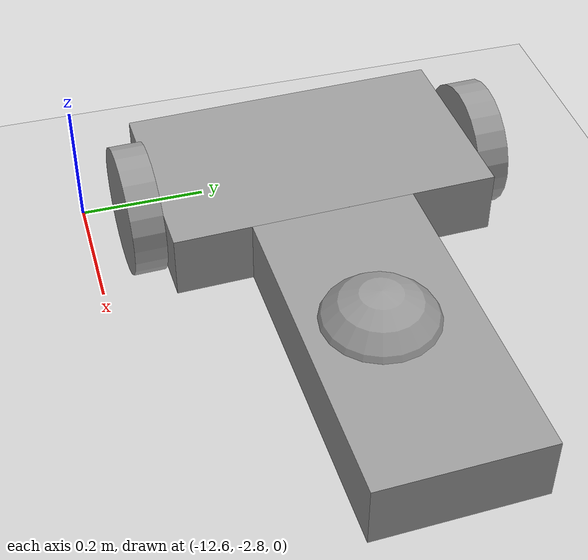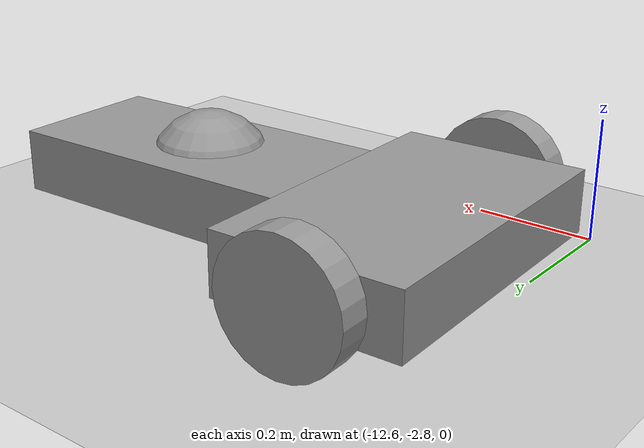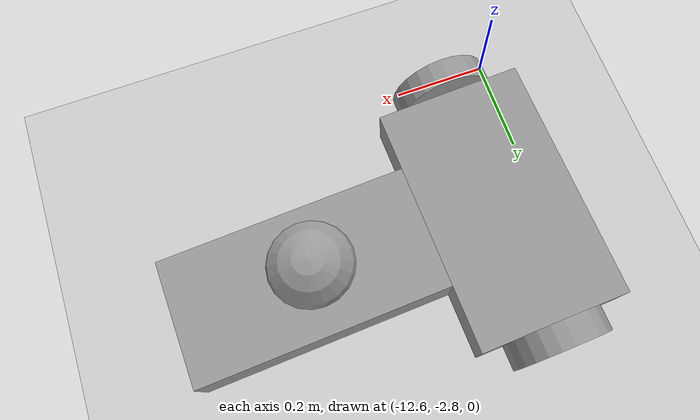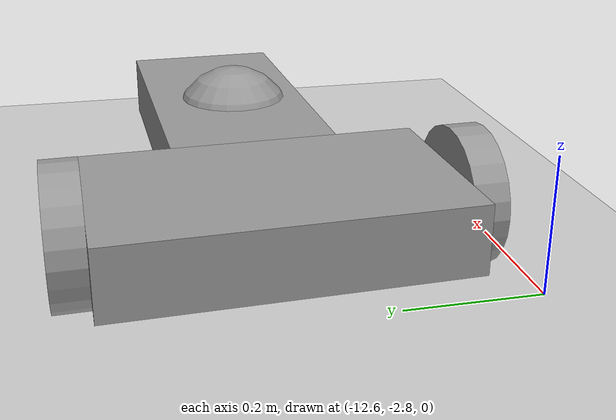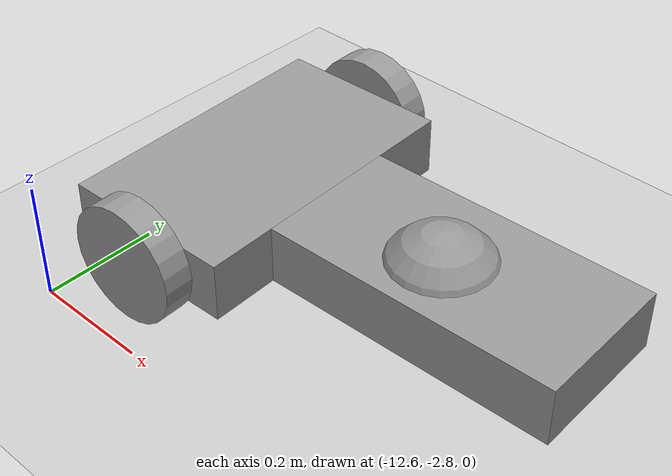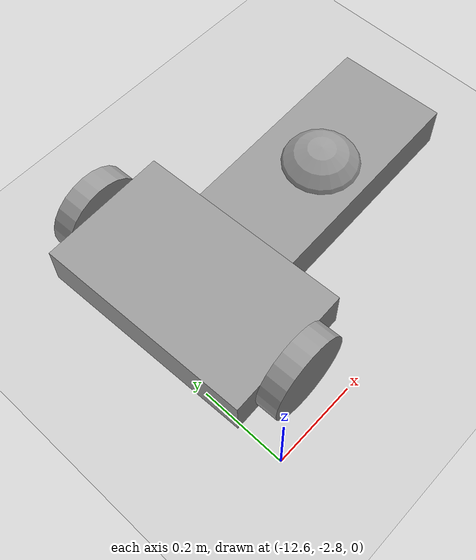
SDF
<sdf version="1.6">
 <world name="default">
  <model name="ground_plane">
   <static>1</static>
   <link name="link">
    <collision name="collision">
     <geometry><plane><normal>0 0 1</normal><size>100 100</size></plane></geometry>
     <surface>
      <contact><collide_bitmask>65535</collide_bitmask></contact>
      <friction><ode><mu>100</mu><mu2>50</mu2></ode></friction>
     </surface>
    </collision>
    <visual name="visual">
     <cast_shadows>0</cast_shadows>
     <geometry><plane><normal>0 0 1</normal><size>100 100</size></plane></geometry>
     <material>
      <script><uri>file://media/materials/scripts/gazebo.material</uri><name>Gazebo/Grey</name></script>
     </material>
    </visual>
   </link>
  </model>
  <model name="Robot">
   <link name="link_3">
    <pose>-0.156001 0.0055 0 0 -0 0</pose>
    <inertial>
     <mass>1</mass>
     <inertia>
      <ixx>0.166667</ixx>
      <ixy>0</ixy>
      <ixz>0</ixz>
      <iyy>0.166667</iyy>
      <iyz>0</iyz>
      <izz>0.166667</izz>
     </inertia>
    </inertial>
    <visual name="visual">
     <geometry><box><size>0.3 0.5 0.1</size></box></geometry>
     <material>
      <lighting>1</lighting>
      <script><uri>file://media/materials/scripts/gazebo.material</uri><name>Gazebo/Grey</name></script>
      <shader type="pixel"><normal_map>__default__</normal_map></shader>
      <ambient>0.3 0.3 0.3 1</ambient>
      <diffuse>0.7 0.7 0.7 1</diffuse>
      <specular>0.01 0.01 0.01 1</specular>
      <emissive>0 0 0 1</emissive>
     </material>
    </visual>
    <collision name="collision">
     <geometry><box><size>0.3 0.5 0.1</size></box></geometry>
     <surface>
      <friction>
       <ode><mu>1</mu><mu2>1</mu2><fdir1>0 0 0</fdir1><slip1>0</slip1><slip2>0</slip2></ode>
       <torsional>
        <coefficient>1</coefficient>
        <patch_radius>0</patch_radius>
        <surface_radius>0</surface_radius>
        <use_patch_radius>1</use_patch_radius>
        <ode><slip>0</slip></ode>
       </torsional>
      </friction>
      <bounce><restitution_coefficient>0</restitution_coefficient><threshold>1e+06</threshold></bounce>
      <contact>
       <collide_without_contact>0</collide_without_contact>
       <collide_without_contact_bitmask>1</collide_without_contact_bitmask>
       <collide_bitmask>1</collide_bitmask>
       <ode>
        <soft_cfm>0</soft_cfm>
        <soft_erp>0.2</soft_erp>
        <kp>1e+13</kp>
        <kd>1</kd>
        <max_vel>0.01</max_vel>
        <min_depth>0</min_depth>
       </ode>
       <bullet>
        <split_impulse>1</split_impulse>
        <split_impulse_penetration_threshold>-0.01</split_impulse_penetration_threshold>
        <soft_cfm>0</soft_cfm>
        <soft_erp>0.2</soft_erp>
        <kp>1e+13</kp>
        <kd>1</kd>
       </bullet>
      </contact>
     </surface>
    </collision>
   </link>
   <link name="link_4_clone">
    <pose>-0.156001 -0.26951 0 1.5707 -0 0</pose>
    <inertial>
     <mass>1</mass>
     <inertia><ixx>0.145833</ixx><ixy>0</ixy><ixz>0</ixz><iyy>0.145833</iyy><iyz>0</iyz><izz>0.125</izz></inertia>
    </inertial>
    <visual name="visual">
     <geometry><cylinder><radius>0.1</radius><length>0.05</length></cylinder></geometry>
     <material>
      <lighting>1</lighting>
      <script><uri>file://media/materials/scripts/gazebo.material</uri><name>Gazebo/Grey</name></script>
      <shader type="pixel"><normal_map>__default__</normal_map></shader>
      <ambient>0.3 0.3 0.3 1</ambient>
      <diffuse>0.7 0.7 0.7 1</diffuse>
      <specular>0.01 0.01 0.01 1</specular>
      <emissive>0 0 0 1</emissive>
     </material>
    </visual>
    <collision name="collision">
     <geometry><cylinder><radius>0.1</radius><length>0.05</length></cylinder></geometry>
     <surface>
      <friction>
       <ode><mu>1</mu><mu2>1</mu2><fdir1>0 0 0</fdir1><slip1>0</slip1><slip2>0</slip2></ode>
       <torsional>
        <coefficient>1</coefficient>
        <patch_radius>0</patch_radius>
        <surface_radius>0</surface_radius>
        <use_patch_radius>1</use_patch_radius>
        <ode><slip>0</slip></ode>
       </torsional>
      </friction>
      <bounce><restitution_coefficient>0</restitution_coefficient><threshold>1e+06</threshold></bounce>
      <contact>
       <collide_without_contact>0</collide_without_contact>
       <collide_without_contact_bitmask>1</collide_without_contact_bitmask>
       <collide_bitmask>1</collide_bitmask>
       <ode>
        <soft_cfm>0</soft_cfm>
        <soft_erp>0.2</soft_erp>
        <kp>1e+13</kp>
        <kd>1</kd>
        <max_vel>0.01</max_vel>
        <min_depth>0</min_depth>
       </ode>
       <bullet>
        <split_impulse>1</split_impulse>
        <split_impulse_penetration_threshold>-0.01</split_impulse_penetration_threshold>
        <soft_cfm>0</soft_cfm>
        <soft_erp>0.2</soft_erp>
        <kp>1e+13</kp>
        <kd>1</kd>
       </bullet>
      </contact>
     </surface>
    </collision>
   </link>
   <link name="link_4_clone_clone">
    <pose>-0.156001 0.28051 0 1.5707 -0 0</pose>
    <inertial>
     <mass>1</mass>
     <inertia><ixx>0.145833</ixx><ixy>0</ixy><ixz>0</ixz><iyy>0.145833</iyy><iyz>0</iyz><izz>0.125</izz></inertia>
    </inertial>
    <visual name="visual">
     <geometry><cylinder><radius>0.1</radius><length>0.05</length></cylinder></geometry>
     <material>
      <lighting>1</lighting>
      <script><uri>file://media/materials/scripts/gazebo.material</uri><name>Gazebo/Grey</name></script>
      <shader type="pixel"><normal_map>__default__</normal_map></shader>
      <ambient>0.3 0.3 0.3 1</ambient>
      <diffuse>0.7 0.7 0.7 1</diffuse>
      <specular>0.01 0.01 0.01 1</specular>
      <emissive>0 0 0 1</emissive>
     </material>
    </visual>
    <collision name="collision">
     <geometry><cylinder><radius>0.1</radius><length>0.05</length></cylinder></geometry>
     <surface>
      <friction>
       <ode><mu>1</mu><mu2>1</mu2><fdir1>0 0 0</fdir1><slip1>0</slip1><slip2>0</slip2></ode>
       <torsional>
        <coefficient>1</coefficient>
        <patch_radius>0</patch_radius>
        <surface_radius>0</surface_radius>
        <use_patch_radius>1</use_patch_radius>
        <ode><slip>0</slip></ode>
       </torsional>
      </friction>
      <bounce><restitution_coefficient>0</restitution_coefficient><threshold>1e+06</threshold></bounce>
      <contact>
       <collide_without_contact>0</collide_without_contact>
       <collide_without_contact_bitmask>1</collide_without_contact_bitmask>
       <collide_bitmask>1</collide_bitmask>
       <ode>
        <soft_cfm>0</soft_cfm>
        <soft_erp>0.2</soft_erp>
        <kp>1e+13</kp>
        <kd>1</kd>
        <max_vel>0.01</max_vel>
        <min_depth>0</min_depth>
       </ode>
       <bullet>
        <split_impulse>1</split_impulse>
        <split_impulse_penetration_threshold>-0.01</split_impulse_penetration_threshold>
        <soft_cfm>0</soft_cfm>
        <soft_erp>0.2</soft_erp>
        <kp>1e+13</kp>
        <kd>1</kd>
       </bullet>
      </contact>
     </surface>
    </collision>
   </link>
   <link name="link_5">
    <pose>0.244001 -0.002 0 0 -0 0</pose>
    <inertial>
     <mass>1</mass>
     <inertia>
      <ixx>0.166667</ixx>
      <ixy>0</ixy>
      <ixz>0</ixz>
      <iyy>0.166667</iyy>
      <iyz>0</iyz>
      <izz>0.166667</izz>
     </inertia>
    </inertial>
    <visual name="visual">
     <geometry><box><size>0.5 0.25 0.1</size></box></geometry>
     <material>
      <lighting>1</lighting>
      <script><uri>file://media/materials/scripts/gazebo.material</uri><name>Gazebo/Grey</name></script>
      <shader type="pixel"><normal_map>__default__</normal_map></shader>
      <ambient>0.3 0.3 0.3 1</ambient>
      <diffuse>0.7 0.7 0.7 1</diffuse>
      <specular>0.01 0.01 0.01 1</specular>
      <emissive>0 0 0 1</emissive>
     </material>
    </visual>
    <collision name="collision">
     <geometry><box><size>0.5 0.25 0.1</size></box></geometry>
     <surface>
      <friction>
       <ode><mu>1</mu><mu2>1</mu2><fdir1>0 0 0</fdir1><slip1>0</slip1><slip2>0</slip2></ode>
       <torsional>
        <coefficient>1</coefficient>
        <patch_radius>0</patch_radius>
        <surface_radius>0</surface_radius>
        <use_patch_radius>1</use_patch_radius>
        <ode><slip>0</slip></ode>
       </torsional>
      </friction>
      <bounce><restitution_coefficient>0</restitution_coefficient><threshold>1e+06</threshold></bounce>
      <contact>
       <collide_without_contact>0</collide_without_contact>
       <collide_without_contact_bitmask>1</collide_without_contact_bitmask>
       <collide_bitmask>1</collide_bitmask>
       <ode>
        <soft_cfm>0</soft_cfm>
        <soft_erp>0.2</soft_erp>
        <kp>1e+13</kp>
        <kd>1</kd>
        <max_vel>0.01</max_vel>
        <min_depth>0</min_depth>
       </ode>
       <bullet>
        <split_impulse>1</split_impulse>
        <split_impulse_penetration_threshold>-0.01</split_impulse_penetration_threshold>
        <soft_cfm>0</soft_cfm>
        <soft_erp>0.2</soft_erp>
        <kp>1e+13</kp>
        <kd>1</kd>
       </bullet>
      </contact>
     </surface>
    </collision>
   </link>
   <link name="link_7">
    <pose>0.224001 -0.0145 0 0 -0 0</pose>
    <inertial>
     <mass>1</mass>
     <inertia><ixx>0.1</ixx><ixy>0</ixy><ixz>0</ixz><iyy>0.1</iyy><iyz>0</iyz><izz>0.1</izz></inertia>
    </inertial>
    <visual name="visual">
     <geometry><sphere><radius>0.1</radius></sphere></geometry>
     <material>
      <lighting>1</lighting>
      <script><uri>file://media/materials/scripts/gazebo.material</uri><name>Gazebo/Grey</name></script>
      <shader type="pixel"><normal_map>__default__</normal_map></shader>
      <ambient>0.3 0.3 0.3 1</ambient>
      <diffuse>0.7 0.7 0.7 1</diffuse>
      <specular>0.01 0.01 0.01 1</specular>
      <emissive>0 0 0 1</emissive>
     </material>
    </visual>
    <collision name="collision">
     <geometry><sphere><radius>0.1</radius></sphere></geometry>
     <surface>
      <friction>
       <ode><mu>1</mu><mu2>1</mu2><fdir1>0 0 0</fdir1><slip1>0</slip1><slip2>0</slip2></ode>
       <torsional>
        <coefficient>1</coefficient>
        <patch_radius>0</patch_radius>
        <surface_radius>0</surface_radius>
        <use_patch_radius>1</use_patch_radius>
        <ode><slip>0</slip></ode>
       </torsional>
      </friction>
      <bounce><restitution_coefficient>0</restitution_coefficient><threshold>1e+06</threshold></bounce>
      <contact>
       <collide_without_contact>0</collide_without_contact>
       <collide_without_contact_bitmask>1</collide_without_contact_bitmask>
       <collide_bitmask>1</collide_bitmask>
       <ode>
        <soft_cfm>0</soft_cfm>
        <soft_erp>0.2</soft_erp>
        <kp>1e+13</kp>
        <kd>1</kd>
        <max_vel>0.01</max_vel>
        <min_depth>0</min_depth>
       </ode>
       <bullet>
        <split_impulse>1</split_impulse>
        <split_impulse_penetration_threshold>-0.01</split_impulse_penetration_threshold>
        <soft_cfm>0</soft_cfm>
        <soft_erp>0.2</soft_erp>
        <kp>1e+13</kp>
        <kd>1</kd>
       </bullet>
      </contact>
     </surface>
    </collision>
   </link>
   <joint name="link_3_JOINT_5" type="revolute">
    <parent>link_3</parent>
    <child>link_4_clone</child>
    <axis>
     <xyz>0 1 0</xyz>
     <use_parent_model_frame>0</use_parent_model_frame>
     <limit>
      <lower>-1.79769e+308</lower>
      <upper>1.79769e+308</upper>
      <effort>-1</effort>
      <velocity>-1</velocity>
     </limit>
     <dynamics>
      <spring_reference>0</spring_reference>
      <spring_stiffness>0</spring_stiffness>
      <damping>0</damping>
      <friction>0</friction>
     </dynamics>
    </axis>
    <physics>
     <ode><limit><cfm>0</cfm><erp>0.2</erp></limit><suspension><cfm>0</cfm><erp>0.2</erp></suspension></ode>
    </physics>
   </joint>
   <joint name="link_3_JOINT_6" type="revolute">
    <parent>link_3</parent>
    <child>link_4_clone_clone</child>
    <axis>
     <xyz>0 1 0</xyz>
     <use_parent_model_frame>0</use_parent_model_frame>
     <limit>
      <lower>-1.79769e+308</lower>
      <upper>1.79769e+308</upper>
      <effort>-1</effort>
      <velocity>-1</velocity>
     </limit>
     <dynamics>
      <spring_reference>0</spring_reference>
      <spring_stiffness>0</spring_stiffness>
      <damping>0</damping>
     </dynamics>
    </axis>
    <physics>
     <ode><limit><cfm>0</cfm><erp>0.2</erp></limit><suspension><cfm>0</cfm><erp>0.2</erp></suspension></ode>
    </physics>
   </joint>
   <joint name="link_3_JOINT_7" type="fixed">
    <parent>link_3</parent>
    <child>link_5</child>
    <physics>
     <ode><limit><cfm>0</cfm><erp>0.2</erp></limit><suspension><cfm>0</cfm><erp>0.2</erp></suspension></ode>
    </physics>
   </joint>
   <joint name="link_5_JOINT_16" type="ball">
    <parent>link_5</parent>
    <child>link_7</child>
    <physics>
     <ode><limit><cfm>0</cfm><erp>0.2</erp></limit><suspension><cfm>0</cfm><erp>0.2</erp></suspension></ode>
    </physics>
   </joint>
   <static>0</static>
   <pose>-12.323 -2.45265 0.100001 -5e-06 4e-06 0.035052</pose>
  </model>
 </world>
</sdf>
